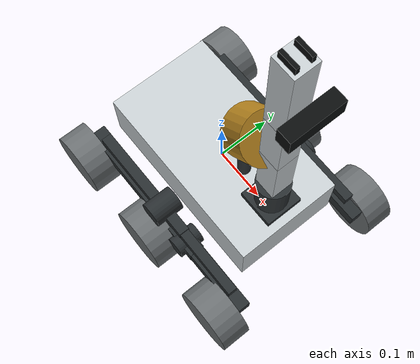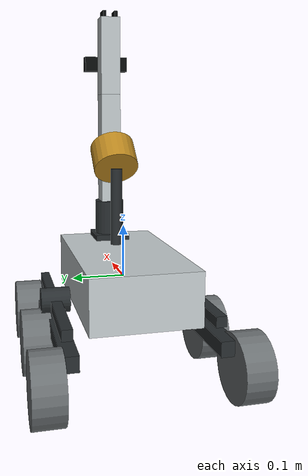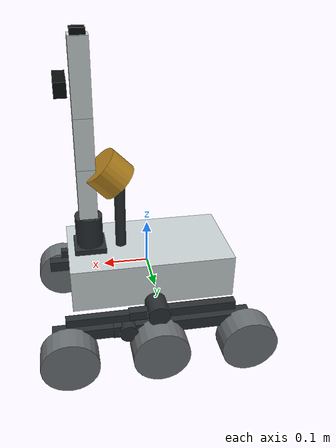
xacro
<?xml version="1.0"?>
<robot name="lunar_rover" xmlns:xacro="http://www.ros.org/wiki/xacro">
  <xacro:arg name="use_sim" default="true"/>
  <xacro:arg name="sensor_noise" default="true"/>
  <xacro:arg name="controller_config" default=""/>
  <xacro:arg
    name="ros2_control_hardware_plugin"
    default="gz_ros2_control/GazeboSimSystem"/>
  <xacro:arg name="arm_camera_xyz" default="0.04 0 0.065"/>
  <xacro:arg name="arm_camera_rpy" default="0 -1.57079632679 0"/>
  <!-- Real hand-eye publisher owns camera optical frames when enabled. -->
  <xacro:arg name="external_camera_tf" default="false"/>

  <!-- Compact rover envelope: 0.54 m long x 0.40 m wide including wheels. -->
  <xacro:property name="track" value="0.345"/>
  <xacro:property name="front_x" value="0.195"/>
  <xacro:property name="rear_x" value="-0.195"/>
  <xacro:property name="middle_x" value="0.00"/>
  <xacro:property name="rocker_y" value="0.135"/>
  <xacro:property name="wheel_radius" value="0.0625"/>
  <xacro:property name="wheel_width" value="0.055"/>
  <xacro:property name="wheel_mass" value="0.70"/>
  <xacro:property name="wheel_center_z" value="-0.12"/>
  <xacro:property name="steering_limit" value="${pi / 3.0}"/>

  <material name="regolith_gray">
    <color rgba="0.42 0.44 0.45 1.0"/>
  </material>
  <material name="chassis_white">
    <color rgba="0.78 0.81 0.82 1.0"/>
  </material>
  <material name="suspension_dark">
    <color rgba="0.16 0.18 0.19 1.0"/>
  </material>
  <material name="sensor_gold">
    <color rgba="0.72 0.52 0.12 1.0"/>
  </material>
  <material name="camera_black">
    <color rgba="0.04 0.05 0.05 1.0"/>
  </material>

  <xacro:macro name="box_inertial" params="mass x y z">
    <inertial>
      <origin xyz="0 0 0" rpy="0 0 0"/>
      <mass value="${mass}"/>
      <inertia
        ixx="${mass * (y * y + z * z) / 12.0}"
        ixy="0.0"
        ixz="0.0"
        iyy="${mass * (x * x + z * z) / 12.0}"
        iyz="0.0"
        izz="${mass * (x * x + y * y) / 12.0}"/>
    </inertial>
  </xacro:macro>

  <xacro:macro name="wheel_inertial" params="mass radius width">
    <inertial>
      <origin xyz="0 0 0" rpy="0 0 0"/>
      <mass value="${mass}"/>
      <inertia
        ixx="${mass * (3.0 * radius * radius + width * width) / 12.0}"
        ixy="0.0"
        ixz="0.0"
        iyy="${0.5 * mass * radius * radius}"
        iyz="0.0"
        izz="${mass * (3.0 * radius * radius + width * width) / 12.0}"/>
    </inertial>
  </xacro:macro>

  <xacro:macro name="wheel_link" params="name">
    <link name="${name}_wheel_link">
      <visual>
        <origin xyz="0 0 0" rpy="${pi / 2.0} 0 0"/>
        <geometry>
          <cylinder radius="${wheel_radius}" length="${wheel_width}"/>
        </geometry>
        <material name="regolith_gray"/>
      </visual>
      <collision>
        <origin xyz="0 0 0" rpy="${pi / 2.0} 0 0"/>
        <geometry>
          <cylinder radius="${wheel_radius}" length="${wheel_width}"/>
        </geometry>
      </collision>
      <xacro:wheel_inertial
        mass="${wheel_mass}"
        radius="${wheel_radius}"
        width="${wheel_width}"/>
    </link>
    <gazebo reference="${name}_wheel_link">
      <mu1>1.20</mu1>
      <mu2>0.85</mu2>
      <kp>1000000.0</kp>
      <kd>100.0</kd>
      <minDepth>0.001</minDepth>
      <maxVel>0.10</maxVel>
      <selfCollide>false</selfCollide>
      <material>Gazebo/DarkGrey</material>
    </gazebo>
  </xacro:macro>

  <xacro:macro
    name="steered_wheel"
    params="name parent x y z">
    <link name="${name}_steering_link">
      <visual>
        <geometry>
          <box size="0.044 0.044 0.060"/>
        </geometry>
        <material name="suspension_dark"/>
      </visual>
      <collision>
        <geometry>
          <box size="0.044 0.044 0.060"/>
        </geometry>
      </collision>
      <xacro:box_inertial mass="0.16" x="0.044" y="0.044" z="0.060"/>
    </link>
    <joint name="${name}_steering_joint" type="revolute">
      <parent link="${parent}"/>
      <child link="${name}_steering_link"/>
      <origin xyz="${x} ${y} ${z}" rpy="0 0 0"/>
      <axis xyz="0 0 1"/>
      <limit
        lower="${-steering_limit}"
        upper="${steering_limit}"
        effort="40.0"
        velocity="1.2"/>
      <dynamics damping="0.8" friction="0.2"/>
    </joint>
    <xacro:wheel_link name="${name}"/>
    <joint name="${name}_wheel_joint" type="continuous">
      <parent link="${name}_steering_link"/>
      <child link="${name}_wheel_link"/>
      <origin xyz="0 0 0" rpy="0 0 0"/>
      <!-- Positive angular velocity produces motion along base_link +X. -->
      <axis xyz="0 1 0"/>
      <limit effort="35.0" velocity="12.0"/>
      <dynamics damping="0.08" friction="0.03"/>
    </joint>
  </xacro:macro>

  <xacro:macro name="fixed_steer_wheel" params="name parent x y z">
    <xacro:wheel_link name="${name}"/>
    <joint name="${name}_wheel_joint" type="continuous">
      <parent link="${parent}"/>
      <child link="${name}_wheel_link"/>
      <origin xyz="${x} ${y} ${z}" rpy="0 0 0"/>
      <!-- Positive angular velocity produces motion along base_link +X. -->
      <axis xyz="0 1 0"/>
      <limit effort="35.0" velocity="12.0"/>
      <dynamics damping="0.08" friction="0.03"/>
    </joint>
  </xacro:macro>

  <xacro:macro name="suspension_side" params="side sign">
    <link name="${side}_rocker_link">
      <visual>
        <origin xyz="-0.055 0 -0.040" rpy="0 0 0"/>
        <geometry>
          <box size="0.305 0.030 0.028"/>
        </geometry>
        <material name="suspension_dark"/>
      </visual>
      <visual>
        <origin xyz="-0.055 0 -0.005" rpy="0 0 0"/>
        <geometry>
          <box size="0.235 0.020 0.020"/>
        </geometry>
        <material name="suspension_dark"/>
      </visual>
      <visual>
        <origin xyz="0 0 0" rpy="${pi / 2.0} 0 0"/>
        <geometry>
          <cylinder radius="0.024" length="0.055"/>
        </geometry>
        <material name="suspension_dark"/>
      </visual>
      <collision>
        <origin xyz="-0.055 0 -0.040" rpy="0 0 0"/>
        <geometry>
          <box size="0.305 0.030 0.028"/>
        </geometry>
      </collision>
      <xacro:box_inertial mass="0.85" x="0.305" y="0.030" z="0.028"/>
    </link>
    <joint name="${side}_rocker_joint" type="revolute">
      <parent link="base_link"/>
      <child link="${side}_rocker_link"/>
      <origin xyz="0 ${sign * rocker_y} -0.04" rpy="0 0 0"/>
      <axis xyz="0 1 0"/>
      <limit lower="${-0.45}" upper="0.45" effort="180.0" velocity="1.5"/>
      <dynamics damping="5.0" friction="0.5"/>
    </joint>

    <link name="${side}_bogie_link">
      <visual>
        <origin xyz="0.045 0 0" rpy="0 0 0"/>
        <geometry>
          <box size="0.235 0.028 0.026"/>
        </geometry>
        <material name="suspension_dark"/>
      </visual>
      <visual>
        <origin xyz="0.045 0 0.032" rpy="0 0 0"/>
        <geometry>
          <box size="0.175 0.018 0.018"/>
        </geometry>
        <material name="suspension_dark"/>
      </visual>
      <visual>
        <origin xyz="0 0 0" rpy="${pi / 2.0} 0 0"/>
        <geometry>
          <cylinder radius="0.020" length="0.050"/>
        </geometry>
        <material name="suspension_dark"/>
      </visual>
      <collision>
        <origin xyz="0.045 0 0" rpy="0 0 0"/>
        <geometry>
          <box size="0.235 0.028 0.026"/>
        </geometry>
      </collision>
      <xacro:box_inertial mass="0.60" x="0.235" y="0.028" z="0.026"/>
    </link>
    <joint name="${side}_bogie_joint" type="revolute">
      <parent link="${side}_rocker_link"/>
      <child link="${side}_bogie_link"/>
      <origin xyz="0.065 0 -0.04" rpy="0 0 0"/>
      <axis xyz="0 1 0"/>
      <limit lower="${-0.61}" upper="0.61" effort="120.0" velocity="1.8"/>
      <dynamics damping="3.0" friction="0.35"/>
    </joint>

    <xacro:steered_wheel
      name="${side}_front"
      parent="${side}_bogie_link"
      x="${front_x - 0.065}"
      y="${sign * (track / 2.0 - rocker_y)}"
      z="-0.04"/>
    <xacro:fixed_steer_wheel
      name="${side}_middle"
      parent="${side}_bogie_link"
      x="${middle_x - 0.065}"
      y="${sign * (track / 2.0 - rocker_y)}"
      z="-0.04"/>
    <xacro:steered_wheel
      name="${side}_rear"
      parent="${side}_rocker_link"
      x="${rear_x}"
      y="${sign * (track / 2.0 - rocker_y)}"
      z="-0.08"/>
  </xacro:macro>

  <link name="base_link">
    <visual>
      <geometry>
        <box size="0.36 0.20 0.10"/>
      </geometry>
      <material name="chassis_white"/>
    </visual>
    <collision name="base_link_chassis_collision">
      <geometry>
        <box size="0.36 0.20 0.10"/>
      </geometry>
    </collision>
    <xacro:box_inertial mass="6.5" x="0.36" y="0.20" z="0.10"/>
  </link>
  <xacro:suspension_side side="left" sign="1.0"/>
  <xacro:suspension_side side="right" sign="-1.0"/>

  <link name="sensor_mast_link">
    <visual>
      <origin xyz="0 0 0.0775" rpy="0 0 0"/>
      <geometry>
        <cylinder radius="0.012" length="0.155"/>
      </geometry>
      <material name="suspension_dark"/>
    </visual>
    <collision>
      <origin xyz="0 0 0.0775" rpy="0 0 0"/>
      <geometry>
        <cylinder radius="0.012" length="0.155"/>
      </geometry>
    </collision>
    <xacro:box_inertial mass="0.12" x="0.024" y="0.024" z="0.155"/>
  </link>
  <joint name="sensor_mast_joint" type="fixed">
    <parent link="base_link"/>
    <child link="sensor_mast_link"/>
    <origin xyz="0.06 0 0.05" rpy="0 0 0"/>
  </joint>

  <link name="mid360_link">
    <visual>
      <origin xyz="0 0 0.03" rpy="0 0 0"/>
      <geometry>
        <cylinder radius="0.045" length="0.06"/>
      </geometry>
      <material name="sensor_gold"/>
    </visual>
    <collision>
      <origin xyz="0 0 0.03" rpy="0 0 0"/>
      <geometry>
        <cylinder radius="0.045" length="0.06"/>
      </geometry>
    </collision>
    <xacro:box_inertial mass="0.265" x="0.09" y="0.09" z="0.06"/>
  </link>
  <joint name="mid360_joint" type="fixed">
    <parent link="sensor_mast_link"/>
    <child link="mid360_link"/>
    <origin xyz="0 0 0.155" rpy="0 ${45.0 * pi / 180.0} 0"/>
  </joint>
  <link name="livox_frame"/>
  <joint name="livox_frame_joint" type="fixed">
    <parent link="mid360_link"/>
    <child link="livox_frame"/>
    <origin xyz="0 0 0" rpy="0 0 0"/>
  </joint>
  <link name="livox_imu_frame"/>
  <joint name="livox_imu_frame_joint" type="fixed">
    <parent link="mid360_link"/>
    <child link="livox_imu_frame"/>
    <origin xyz="0 0 0" rpy="0 0 0"/>
  </joint>

  <link name="gemini335_link">
    <visual>
      <geometry>
        <!-- Gemini 335: D x W x H = 30 x 90 x 25 mm. -->
        <box size="0.030 0.090 0.025"/>
      </geometry>
      <material name="camera_black"/>
    </visual>
    <collision>
      <geometry>
        <box size="0.030 0.090 0.025"/>
      </geometry>
    </collision>
    <xacro:box_inertial mass="0.097" x="0.030" y="0.090" z="0.025"/>
  </link>
  <joint name="gemini335_joint" type="fixed">
    <parent link="arm_link4"/>
    <child link="gemini335_link"/>
    <origin xyz="$(arg arm_camera_xyz)" rpy="$(arg arm_camera_rpy)"/>
  </joint>

  <xacro:unless value="$(arg external_camera_tf)">
  <link name="gemini335_color_optical_frame"/>
  <joint name="gemini335_color_optical_joint" type="fixed">
    <parent link="gemini335_link"/>
    <child link="gemini335_color_optical_frame"/>
    <origin xyz="0.015 0 0" rpy="${-pi / 2.0} 0 ${-pi / 2.0}"/>
  </joint>
  <link name="gemini335_depth_optical_frame"/>
  <joint name="gemini335_depth_optical_joint" type="fixed">
    <parent link="gemini335_color_optical_frame"/>
    <child link="gemini335_depth_optical_frame"/>
    <origin xyz="0 0 0" rpy="0 0 0"/>
  </joint>
  <!-- Orbbec SDK v2 defaults retained as fixed aliases for real-sensor topics. -->
  <link name="camera_color_optical_frame"/>
  <joint name="camera_color_optical_alias_joint" type="fixed">
    <parent link="gemini335_color_optical_frame"/>
    <child link="camera_color_optical_frame"/>
    <origin xyz="0 0 0" rpy="0 0 0"/>
  </joint>
  <link name="camera_depth_optical_frame"/>
  <joint name="camera_depth_optical_alias_joint" type="fixed">
    <parent link="gemini335_depth_optical_frame"/>
    <child link="camera_depth_optical_frame"/>
    <origin xyz="0 0 0" rpy="0 0 0"/>
  </joint>
  </xacro:unless>

  <!-- Real arm geometry. ROS zero equals servo Home: 90/180/135/135 degrees. -->
  <xacro:property name="arm_base_x" value="0.13"/>
  <xacro:property name="arm_base_z" value="0.056"/>
  <xacro:property name="arm_j1_to_j2_z" value="0.07545"/>
  <xacro:property name="arm_upper_length" value="0.11391"/>
  <xacro:property name="arm_forearm_length" value="0.11000"/>
  <xacro:property name="arm_tool_length" value="0.15601"/>
  <xacro:property name="arm_j1_lower" value="${-pi / 2.0}"/>
  <xacro:property name="arm_j1_upper" value="${pi}"/>
  <xacro:property name="arm_pitch_lower" value="${-1.5}"/>
  <xacro:property name="arm_pitch_upper" value="${pi}"/>
  <xacro:property name="arm_elbow_lower" value="${-3.0 * pi / 4.0}"/>
  <xacro:property name="arm_elbow_upper" value="${3.0 * pi / 4.0}"/>
  <xacro:property name="arm_gripper_stroke" value="0.045"/>
  <xacro:property name="arm_finger_half_gap" value="0.012"/>
  <xacro:property name="arm_finger_size" value="0.03 0.006 0.025"/>

  <link name="arm_base_link">
    <visual>
      <geometry>
        <box size="0.07 0.07 0.012"/>
      </geometry>
      <material name="suspension_dark"/>
    </visual>
    <collision>
      <geometry>
        <box size="0.07 0.07 0.012"/>
      </geometry>
    </collision>
    <xacro:box_inertial mass="0.04" x="0.07" y="0.07" z="0.012"/>
  </link>
  <joint name="arm_base_joint" type="fixed">
    <parent link="base_link"/>
    <child link="arm_base_link"/>
    <origin xyz="${arm_base_x} 0 ${arm_base_z}" rpy="0 0 0"/>
  </joint>

  <!-- J1: yaw axis. The shoulder riser keeps J2 directly above J1. -->
  <link name="arm_link1">
    <visual>
      <origin xyz="0 0 ${arm_j1_to_j2_z / 2.0}" rpy="0 0 0"/>
      <geometry>
        <cylinder radius="0.03" length="${arm_j1_to_j2_z}"/>
      </geometry>
      <material name="suspension_dark"/>
    </visual>
    <collision>
      <origin xyz="0 0 ${arm_j1_to_j2_z / 2.0}" rpy="0 0 0"/>
      <geometry>
        <cylinder radius="0.03" length="${arm_j1_to_j2_z}"/>
      </geometry>
    </collision>
    <xacro:box_inertial mass="0.06" x="0.06" y="0.06" z="${arm_j1_to_j2_z}"/>
  </link>
  <joint name="arm_joint1" type="revolute">
    <parent link="arm_base_link"/>
    <child link="arm_link1"/>
    <origin xyz="0 0 0" rpy="0 0 0"/>
    <axis xyz="0 0 1"/>
    <limit
      lower="${arm_j1_lower}"
      upper="${arm_j1_upper}"
      effort="15.0"
      velocity="1.5"/>
    <dynamics damping="0.5" friction="0.1"/>
  </joint>

  <!-- J2: shoulder pitch, located at the top of the riser. -->
  <link name="arm_link2">
    <visual>
      <origin xyz="0 0 ${arm_upper_length / 2.0}" rpy="0 0 0"/>
      <geometry>
        <box size="0.04 0.04 ${arm_upper_length}"/>
      </geometry>
      <material name="chassis_white"/>
    </visual>
    <collision>
      <origin xyz="0 0 ${arm_upper_length / 2.0}" rpy="0 0 0"/>
      <geometry>
        <box size="0.04 0.04 ${arm_upper_length}"/>
      </geometry>
    </collision>
    <xacro:box_inertial mass="0.08" x="0.04" y="0.04" z="${arm_upper_length}"/>
  </link>
  <joint name="arm_joint2" type="revolute">
    <parent link="arm_link1"/>
    <child link="arm_link2"/>
    <origin xyz="0 0 ${arm_j1_to_j2_z}" rpy="0 0 0"/>
    <axis xyz="0 1 0"/>
    <limit
      lower="${arm_pitch_lower}"
      upper="${arm_pitch_upper}"
      effort="15.0"
      velocity="1.5"/>
    <dynamics damping="0.5" friction="0.1"/>
  </joint>

  <!-- J3: elbow pitch. -->
  <link name="arm_link3">
    <visual>
      <origin xyz="0 0 ${arm_forearm_length / 2.0}" rpy="0 0 0"/>
      <geometry>
        <box size="0.04 0.04 ${arm_forearm_length}"/>
      </geometry>
      <material name="chassis_white"/>
    </visual>
    <collision>
      <origin xyz="0 0 ${arm_forearm_length / 2.0}" rpy="0 0 0"/>
      <geometry>
        <box size="0.04 0.04 ${arm_forearm_length}"/>
      </geometry>
    </collision>
    <xacro:box_inertial mass="0.06" x="0.04" y="0.04" z="${arm_forearm_length}"/>
  </link>
  <joint name="arm_joint3" type="revolute">
    <parent link="arm_link2"/>
    <child link="arm_link3"/>
    <origin xyz="0 0 ${arm_upper_length}" rpy="0 0 0"/>
    <axis xyz="0 1 0"/>
    <limit
      lower="${arm_elbow_lower}"
      upper="${arm_elbow_upper}"
      effort="12.0"
      velocity="1.8"/>
    <dynamics damping="0.4" friction="0.08"/>
  </joint>

  <!-- J4: wrist pitch. The palm carries the fixed gripper finger and J5's jaw. -->
  <link name="arm_link4">
    <visual>
      <origin xyz="0 0 ${arm_tool_length / 2.0}" rpy="0 0 0"/>
      <geometry>
        <box size="0.04 0.04 ${arm_tool_length}"/>
      </geometry>
      <material name="chassis_white"/>
    </visual>
    <visual>
      <origin xyz="0 ${-arm_finger_half_gap} ${arm_tool_length}" rpy="0 0 0"/>
      <geometry>
        <box size="${arm_finger_size}"/>
      </geometry>
      <material name="camera_black"/>
    </visual>
    <collision>
      <origin xyz="0 0 ${arm_tool_length / 2.0}" rpy="0 0 0"/>
      <geometry>
        <box size="0.04 0.04 ${arm_tool_length}"/>
      </geometry>
    </collision>
    <collision>
      <origin xyz="0 ${-arm_finger_half_gap} ${arm_tool_length}" rpy="0 0 0"/>
      <geometry>
        <box size="${arm_finger_size}"/>
      </geometry>
    </collision>
    <xacro:box_inertial mass="0.06" x="0.04" y="0.04" z="${arm_tool_length}"/>
  </link>
  <joint name="arm_joint4" type="revolute">
    <parent link="arm_link3"/>
    <child link="arm_link4"/>
    <origin xyz="0 0 ${arm_forearm_length}" rpy="0 0 0"/>
    <axis xyz="0 1 0"/>
    <limit
      lower="${arm_pitch_lower}"
      upper="${arm_pitch_upper}"
      effort="10.0"
      velocity="2.0"/>
    <dynamics damping="0.4" friction="0.08"/>
  </joint>

  <!-- J5: prismatic gripper jaw. The fixed finger is part of arm_link4; the
       moving finger travels along +y so the mid-point is the working centre. -->
  <link name="arm_link5">
    <visual>
      <origin xyz="0 ${arm_finger_half_gap} 0" rpy="0 0 0"/>
      <geometry>
        <box size="${arm_finger_size}"/>
      </geometry>
      <material name="camera_black"/>
    </visual>
    <collision>
      <origin xyz="0 ${arm_finger_half_gap} 0" rpy="0 0 0"/>
      <geometry>
        <box size="${arm_finger_size}"/>
      </geometry>
    </collision>
    <xacro:box_inertial mass="0.005" x="0.03" y="0.006" z="0.025"/>
  </link>
  <joint name="arm_joint5" type="prismatic">
    <parent link="arm_link4"/>
    <child link="arm_link5"/>
    <origin xyz="0 0 ${arm_tool_length}" rpy="0 0 0"/>
    <axis xyz="0 1 0"/>
    <limit
      lower="0.0"
      upper="${arm_gripper_stroke}"
      effort="8.0"
      velocity="0.12"/>
    <dynamics damping="0.6" friction="0.15"/>
  </joint>

  <gazebo reference="arm_link1">
    <selfCollide>true</selfCollide>
  </gazebo>
  <gazebo reference="arm_link2">
    <selfCollide>true</selfCollide>
  </gazebo>
  <gazebo reference="arm_link3">
    <selfCollide>true</selfCollide>
  </gazebo>
  <gazebo reference="arm_link4">
    <selfCollide>true</selfCollide>
  </gazebo>
  <gazebo reference="arm_link5">
    <selfCollide>true</selfCollide>
  </gazebo>

  <ros2_control name="LunarRoverSystem" type="system">
    <hardware>
      <plugin>$(arg ros2_control_hardware_plugin)</plugin>
    </hardware>

    <joint name="left_front_steering_joint">
      <command_interface name="position">
        <param name="min">${-steering_limit}</param>
        <param name="max">${steering_limit}</param>
      </command_interface>
      <state_interface name="position"/>
      <state_interface name="velocity"/>
    </joint>
    <joint name="right_front_steering_joint">
      <command_interface name="position">
        <param name="min">${-steering_limit}</param>
        <param name="max">${steering_limit}</param>
      </command_interface>
      <state_interface name="position"/>
      <state_interface name="velocity"/>
    </joint>
    <joint name="left_rear_steering_joint">
      <command_interface name="position">
        <param name="min">${-steering_limit}</param>
        <param name="max">${steering_limit}</param>
      </command_interface>
      <state_interface name="position"/>
      <state_interface name="velocity"/>
    </joint>
    <joint name="right_rear_steering_joint">
      <command_interface name="position">
        <param name="min">${-steering_limit}</param>
        <param name="max">${steering_limit}</param>
      </command_interface>
      <state_interface name="position"/>
      <state_interface name="velocity"/>
    </joint>

    <joint name="left_front_wheel_joint">
      <command_interface name="velocity">
        <param name="min">-12.0</param>
        <param name="max">12.0</param>
      </command_interface>
      <state_interface name="position"/>
      <state_interface name="velocity"/>
    </joint>
    <joint name="left_middle_wheel_joint">
      <command_interface name="velocity">
        <param name="min">-12.0</param>
        <param name="max">12.0</param>
      </command_interface>
      <state_interface name="position"/>
      <state_interface name="velocity"/>
    </joint>
    <joint name="left_rear_wheel_joint">
      <command_interface name="velocity">
        <param name="min">-12.0</param>
        <param name="max">12.0</param>
      </command_interface>
      <state_interface name="position"/>
      <state_interface name="velocity"/>
    </joint>
    <joint name="right_front_wheel_joint">
      <command_interface name="velocity">
        <param name="min">-12.0</param>
        <param name="max">12.0</param>
      </command_interface>
      <state_interface name="position"/>
      <state_interface name="velocity"/>
    </joint>
    <joint name="right_middle_wheel_joint">
      <command_interface name="velocity">
        <param name="min">-12.0</param>
        <param name="max">12.0</param>
      </command_interface>
      <state_interface name="position"/>
      <state_interface name="velocity"/>
    </joint>
    <joint name="right_rear_wheel_joint">
      <command_interface name="velocity">
        <param name="min">-12.0</param>
        <param name="max">12.0</param>
      </command_interface>
      <state_interface name="position"/>
      <state_interface name="velocity"/>
    </joint>

    <joint name="left_rocker_joint">
      <command_interface name="effort">
        <param name="min">-180.0</param>
        <param name="max">180.0</param>
      </command_interface>
      <state_interface name="position"/>
      <state_interface name="velocity"/>
    </joint>
    <joint name="right_rocker_joint">
      <command_interface name="effort">
        <param name="min">-180.0</param>
        <param name="max">180.0</param>
      </command_interface>
      <state_interface name="position"/>
      <state_interface name="velocity"/>
    </joint>
    <joint name="left_bogie_joint">
      <state_interface name="position"/>
      <state_interface name="velocity"/>
    </joint>
    <joint name="right_bogie_joint">
      <state_interface name="position"/>
      <state_interface name="velocity"/>
    </joint>

    <joint name="arm_joint1">
      <command_interface name="position">
        <param name="min">${arm_j1_lower}</param>
        <param name="max">${arm_j1_upper}</param>
      </command_interface>
      <state_interface name="position"/>
      <state_interface name="velocity"/>
    </joint>
    <joint name="arm_joint2">
      <command_interface name="position">
        <param name="min">${arm_pitch_lower}</param>
        <param name="max">${arm_pitch_upper}</param>
      </command_interface>
      <state_interface name="position"/>
      <state_interface name="velocity"/>
    </joint>
    <joint name="arm_joint3">
      <command_interface name="position">
        <param name="min">${arm_elbow_lower}</param>
        <param name="max">${arm_elbow_upper}</param>
      </command_interface>
      <state_interface name="position"/>
      <state_interface name="velocity"/>
    </joint>
    <joint name="arm_joint4">
      <command_interface name="position">
        <param name="min">${arm_pitch_lower}</param>
        <param name="max">${arm_pitch_upper}</param>
      </command_interface>
      <state_interface name="position"/>
      <state_interface name="velocity"/>
    </joint>
    <joint name="arm_joint5">
      <command_interface name="position">
        <param name="min">0.0</param>
        <param name="max">${arm_gripper_stroke}</param>
      </command_interface>
      <state_interface name="position"/>
      <state_interface name="velocity"/>
    </joint>
  </ros2_control>

  <xacro:if value="$(arg use_sim)">
    <gazebo>
      <plugin
        filename="gz_ros2_control-system"
        name="gz_ros2_control::GazeboSimROS2ControlPlugin">
        <parameters>$(arg controller_config)</parameters>
      </plugin>
      <plugin
        filename="libignition-gazebo-odometry-publisher-system.so"
        name="ignition::gazebo::systems::OdometryPublisher">
        <odom_frame>world</odom_frame>
        <robot_base_frame>base_link</robot_base_frame>
        <odom_publish_frequency>50</odom_publish_frequency>
        <odom_topic>/simulation/ground_truth/odometry</odom_topic>
        <odom_covariance_topic>/simulation/ground_truth/odometry_with_covariance</odom_covariance_topic>
        <tf_topic>/simulation/ground_truth/tf</tf_topic>
        <dimensions>3</dimensions>
        <gaussian_noise>0.0</gaussian_noise>
      </plugin>
      <plugin
        filename="libignition-gazebo-touchplugin-system.so"
        name="ignition::gazebo::systems::TouchPlugin">
        <target>rock</target>
        <namespace>simulation/rock_collision</namespace>
        <time>0.001</time>
        <enabled>true</enabled>
      </plugin>
      <plugin
        filename="libignition-gazebo-touchplugin-system.so"
        name="ignition::gazebo::systems::TouchPlugin">
        <target>step</target>
        <namespace>simulation/step_collision</namespace>
        <time>0.001</time>
        <enabled>true</enabled>
      </plugin>
    </gazebo>

    <gazebo reference="base_link">
      <sensor name="chassis_contact_sensor" type="contact">
        <always_on>true</always_on>
        <update_rate>100</update_rate>
        <topic>/simulation/chassis_contacts</topic>
        <contact>
          <collision>base_link_chassis_collision</collision>
        </contact>
      </sensor>
    </gazebo>

    <gazebo reference="mid360_link">
      <sensor name="mid360_gpu_lidar" type="gpu_lidar">
        <always_on>true</always_on>
        <visualize>true</visualize>
        <update_rate>10</update_rate>
        <topic>/mid360/scan</topic>
        <gz_frame_id>livox_frame</gz_frame_id>
        <lidar>
          <scan>
            <horizontal>
              <samples>1800</samples>
              <resolution>1</resolution>
              <min_angle>${-pi}</min_angle>
              <max_angle>${pi}</max_angle>
            </horizontal>
            <vertical>
              <samples>11</samples>
              <resolution>1</resolution>
              <min_angle>${-7.0 * pi / 180.0}</min_angle>
              <max_angle>${52.0 * pi / 180.0}</max_angle>
            </vertical>
          </scan>
          <range>
            <min>0.10</min>
            <max>40.0</max>
            <resolution>0.01</resolution>
          </range>
          <noise>
            <type>gaussian</type>
            <mean>0.0</mean>
            <!-- Range-dependent noise and dropout are added by mid360_sim_adapter. -->
            <stddev>0.0</stddev>
          </noise>
        </lidar>
      </sensor>
      <sensor name="mid360_imu" type="imu">
        <always_on>true</always_on>
        <update_rate>200</update_rate>
        <topic>/mid360/imu</topic>
        <gz_frame_id>livox_imu_frame</gz_frame_id>
        <imu>
          <angular_velocity>
            <x>
              <noise type="gaussian">
                <mean>0.0</mean>
                <xacro:if value="$(arg sensor_noise)">
                  <stddev>0.0007</stddev>
                </xacro:if>
                <xacro:unless value="$(arg sensor_noise)">
                  <stddev>0.0</stddev>
                </xacro:unless>
              </noise>
            </x>
            <y>
              <noise type="gaussian">
                <mean>0.0</mean>
                <xacro:if value="$(arg sensor_noise)">
                  <stddev>0.0007</stddev>
                </xacro:if>
                <xacro:unless value="$(arg sensor_noise)">
                  <stddev>0.0</stddev>
                </xacro:unless>
              </noise>
            </y>
            <z>
              <noise type="gaussian">
                <mean>0.0</mean>
                <xacro:if value="$(arg sensor_noise)">
                  <stddev>0.0007</stddev>
                </xacro:if>
                <xacro:unless value="$(arg sensor_noise)">
                  <stddev>0.0</stddev>
                </xacro:unless>
              </noise>
            </z>
          </angular_velocity>
          <linear_acceleration>
            <x>
              <noise type="gaussian">
                <mean>0.0</mean>
                <xacro:if value="$(arg sensor_noise)">
                  <stddev>0.02</stddev>
                </xacro:if>
                <xacro:unless value="$(arg sensor_noise)">
                  <stddev>0.0</stddev>
                </xacro:unless>
              </noise>
            </x>
            <y>
              <noise type="gaussian">
                <mean>0.0</mean>
                <xacro:if value="$(arg sensor_noise)">
                  <stddev>0.02</stddev>
                </xacro:if>
                <xacro:unless value="$(arg sensor_noise)">
                  <stddev>0.0</stddev>
                </xacro:unless>
              </noise>
            </y>
            <z>
              <noise type="gaussian">
                <mean>0.0</mean>
                <xacro:if value="$(arg sensor_noise)">
                  <stddev>0.02</stddev>
                </xacro:if>
                <xacro:unless value="$(arg sensor_noise)">
                  <stddev>0.0</stddev>
                </xacro:unless>
              </noise>
            </z>
          </linear_acceleration>
        </imu>
      </sensor>
    </gazebo>

    <gazebo reference="gemini335_link">
      <sensor name="gemini335_rgbd" type="rgbd_camera">
        <always_on>true</always_on>
        <visualize>true</visualize>
        <update_rate>15</update_rate>
        <topic>/gemini335</topic>
        <gz_frame_id>gemini335_color_optical_frame</gz_frame_id>
        <camera>
          <optical_frame_id>gemini335_color_optical_frame</optical_frame_id>
          <!-- Depth-priority profile: Gemini 335 640x400 is a 90 x 65 deg mode. -->
          <horizontal_fov>${90.0 * pi / 180.0}</horizontal_fov>
          <image>
            <width>640</width>
            <height>400</height>
            <format>R8G8B8</format>
          </image>
          <clip>
            <!-- Official Minimum-Z for 640x400 is 0.26 m; nominal range reaches 20 m+. -->
            <near>0.26</near>
            <far>20.0</far>
          </clip>
          <!-- Gemini 335 depth min range is ~0.3 m, not the colour camera 0.26 m. -->
          <depth_camera>
            <output>depths</output>
            <clip>
              <near>0.30</near>
              <far>10.0</far>
            </clip>
          </depth_camera>
          <noise>
            <type>gaussian</type>
            <mean>0.0</mean>
            <xacro:if value="$(arg sensor_noise)">
              <!-- Conservative 1.5% spatial precision bound at 2 m. -->
              <stddev>0.030</stddev>
            </xacro:if>
            <xacro:unless value="$(arg sensor_noise)">
              <stddev>0.0</stddev>
            </xacro:unless>
          </noise>
        </camera>
      </sensor>
    </gazebo>
  </xacro:if>
</robot>
